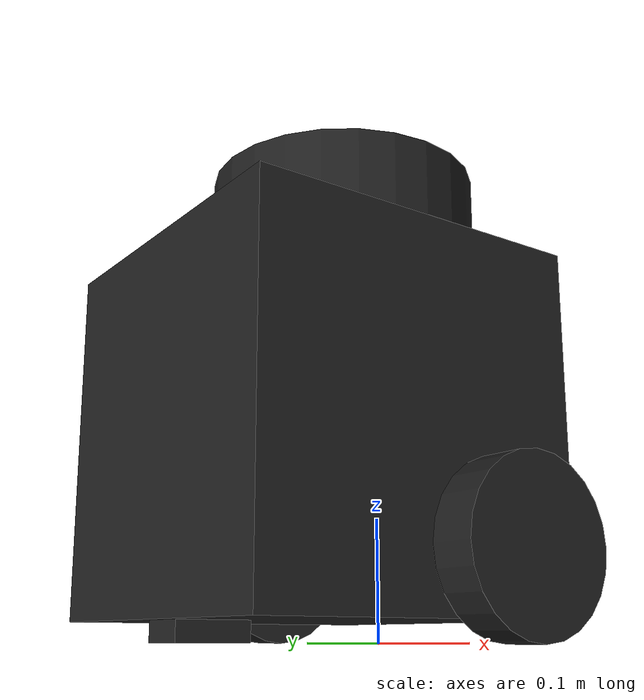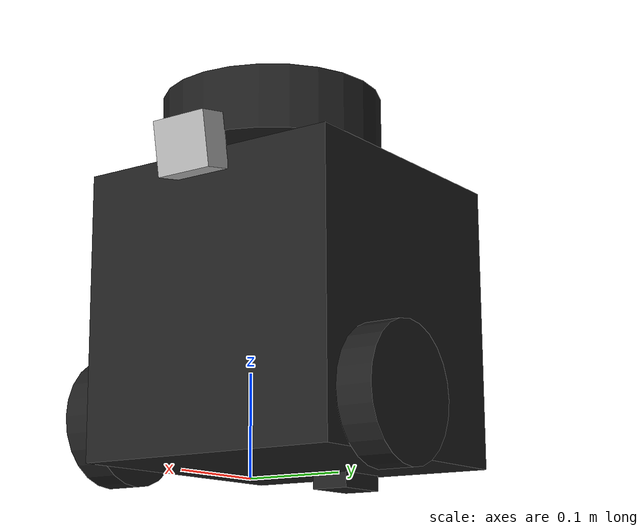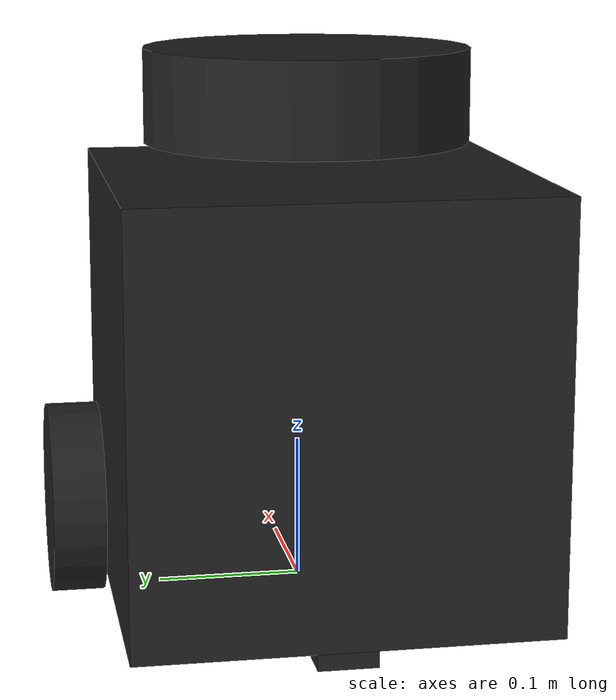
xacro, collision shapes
<?xml version="1.0" ?>
<robot name="turtlebot3_burger_for_racetrack" xmlns:xacro="http://ros.org/wiki/xacro">
  <xacro:include filename="$(find turtlebot3_description)/urdf/common_properties.xacro"/>
  <xacro:include filename="$(find turtlebot3_description)/urdf/turtlebot3_burger_for_racetrack.gazebo.xacro"/>

  <link name="base_footprint"/>

  <joint name="base_joint" type="fixed">
    <parent link="base_footprint"/>
    <child link="base_link"/>
    <origin xyz="0.0 0.0 0.020" rpy="0 0 0"/>
  </joint>

  <link name="base_link">
    <visual>
      <origin xyz="-0.064 0 0.0" rpy="0 0 0"/>
      <geometry>
        <mesh filename="package://turtlebot3_description/meshes/bases/burger_base.stl" scale="0.002 0.002 0.002"/>
      </geometry>
      <material name="light_black"/>
    </visual>

    <collision>
      <origin xyz="-0.064 0 0.140" rpy="0 0 0"/>
      <geometry>
        <box size="0.280 0.280 0.286"/>
      </geometry>
    </collision>

    <inertial>
      <origin xyz="0 0 0" rpy="0 0 0"/>
      <mass value="6.60588032"/>
      <inertia ixx="8.8497664e-03" ixy="-4.9176404e-05" ixz="1.3975514e-04"
         iyy="8.4774808e-03" iyz="-2.00483616e-05"
         izz="8.0257084e-03" />
    </inertial>
  </link>

  <joint name="wheel_left_joint" type="continuous">
    <parent link="base_link"/>
    <child link="wheel_left_link"/>
    <origin xyz="0.0 0.16 0.046" rpy="-1.57 0 0"/>
    <axis xyz="0 0 1"/>
  </joint>

  <link name="wheel_left_link">
    <visual>
      <origin xyz="0 0 0" rpy="1.57 0 0"/>
      <geometry>
        <mesh filename="package://turtlebot3_description/meshes/wheels/left_tire.stl" scale="0.002 0.002 0.002"/>
      </geometry>
      <material name="dark"/>
    </visual>

    <collision>
      <origin xyz="0 0 0" rpy="0 0 0"/>
      <geometry>
        <cylinder length="0.036" radius="0.066"/>
      </geometry>
    </collision>

    <inertial>
      <origin xyz="0 0 0" />
      <mass value="0.22799152" />
      <inertia ixx="4.470232e-05" ixy="-1.69479132e-10" ixz="-2.37526876e-08"
         iyy="4.4769652e-05" iyz="-5.7600428e-11"
         izz="8.2850232e-05" />
      </inertial>
  </link>

  <joint name="wheel_right_joint" type="continuous">
    <parent link="base_link"/>
    <child link="wheel_right_link"/>
    <origin xyz="0.0 -0.160 0.046" rpy="-1.57 0 0"/>
    <axis xyz="0 0 1"/>
  </joint>

  <link name="wheel_right_link">
    <visual>
      <origin xyz="0 0 0" rpy="1.57 0 0"/>
      <geometry>
        <mesh filename="package://turtlebot3_description/meshes/wheels/right_tire.stl" scale="0.002 0.002 0.002"/>
      </geometry>
      <material name="dark"/>
    </visual>

    <collision>
      <origin xyz="0 0 0" rpy="0 0 0"/>
      <geometry>
        <cylinder length="0.036" radius="0.066"/>
      </geometry>
    </collision>

    <inertial>
      <origin xyz="0 0 0" />
      <mass value="0.22799152" />
      <inertia ixx="4.470232e-05" ixy="-1.69479132e-10" ixz="-2.37526876e-08"
         iyy="4.4769652e-05" iyz="-5.7600428e-11"
         izz="8.2850232e-05" />
      </inertial>
  </link>

  <joint name="caster_back_joint" type="fixed">
    <parent link="base_link"/>
    <child link="caster_back_link"/>
    <origin xyz="-0.162 0 -0.008" rpy="-1.57 0 0"/>
  </joint>

  <link name="caster_back_link">
    <collision>
      <origin xyz="0 0.002 0" rpy="0 0 0"/>
      <geometry>
        <box size="0.060 0.018 0.040"/>
      </geometry>
    </collision>

    <inertial>
      <origin xyz="0 0 0" />
      <mass value="0.04" />
      <inertia ixx="0.004" ixy="0.0" ixz="0.0"
               iyy="0.004" iyz="0.0"
               izz="0.004" />
    </inertial>
  </link>

  <joint name="imu_joint" type="fixed">
    <parent link="base_link"/>
    <child link="imu_link"/>
    <origin xyz="-0.064 0 0.136" rpy="0 0 0"/>
  </joint>

  <link name="imu_link"/>

  <joint name="scan_joint" type="fixed">
    <parent link="base_link"/>
    <child link="base_scan"/>
    <origin xyz="-0.064 0 0.344" rpy="0 0 0"/>
  </joint>

  <link name="base_scan">
    <visual>
      <origin xyz="0 0 0.0" rpy="0 0 0"/>
      <geometry>
        <mesh filename="package://turtlebot3_description/meshes/sensors/lds.stl" scale="0.002 0.002 0.002"/>
      </geometry>
      <material name="dark"/>
    </visual>

    <collision>
      <origin xyz="0.03 0 -0.013" rpy="0 0 0"/>
      <geometry>
        <cylinder length="0.063" radius="0.11"/>
      </geometry>
    </collision>

    <inertial>
      <mass value="0.912" />
      <origin xyz="0 0 0" />
      <inertia ixx="0.004" ixy="0.0" ixz="0.0"
               iyy="0.004" iyz="0.0"
               izz="0.004" />
    </inertial>
  </link>

  <joint name="camera_joint" type="fixed">
    <origin xyz="0.080 -0.022 0.260" rpy="0 0.174 0"/>
    <parent link="base_link"/>
    <child link="camera_link"/>
  </joint>

  <link name="camera_link">
    <collision>
      <origin xyz="0.01 0.022 0.026" rpy="0 0 0"/>
      <geometry>
        <box size="0.03 0.060 0.054"/>
      </geometry>
    </collision>
  </link>

  <joint name="camera_rgb_joint" type="fixed">
    <origin xyz="0.006 0.022 0.018" rpy="0 0 0"/>
    <parent link="camera_link"/>
    <child link="camera_rgb_frame"/>
  </joint>
  <link name="camera_rgb_frame"/>

  <joint name="camera_rgb_optical_joint" type="fixed">
    <origin xyz="0 0 0" rpy="-1.57 0 -1.57"/>
    <parent link="camera_rgb_frame"/>
    <child link="camera_rgb_optical_frame"/>
  </joint>
  <link name="camera_rgb_optical_frame"/>

</robot>
